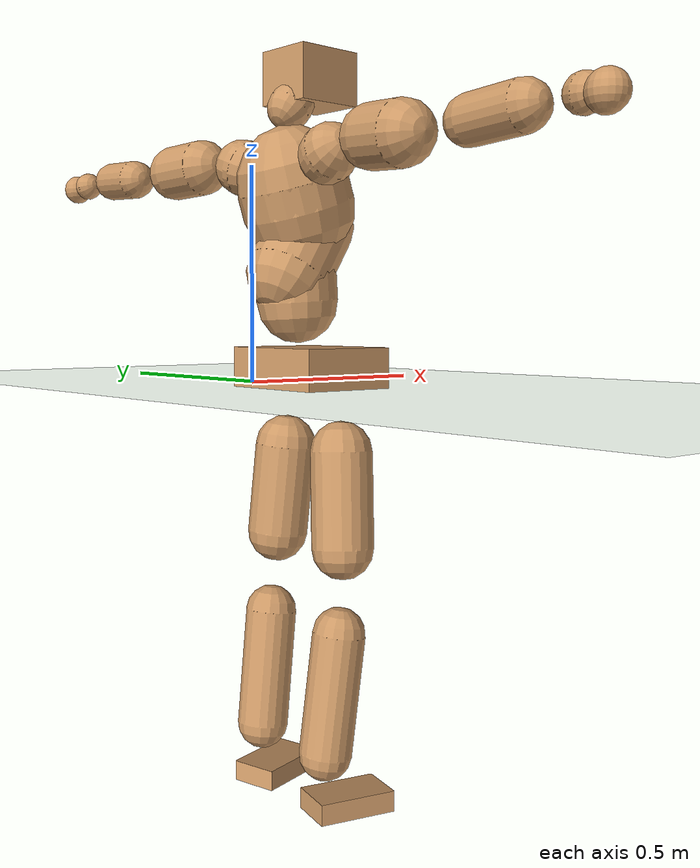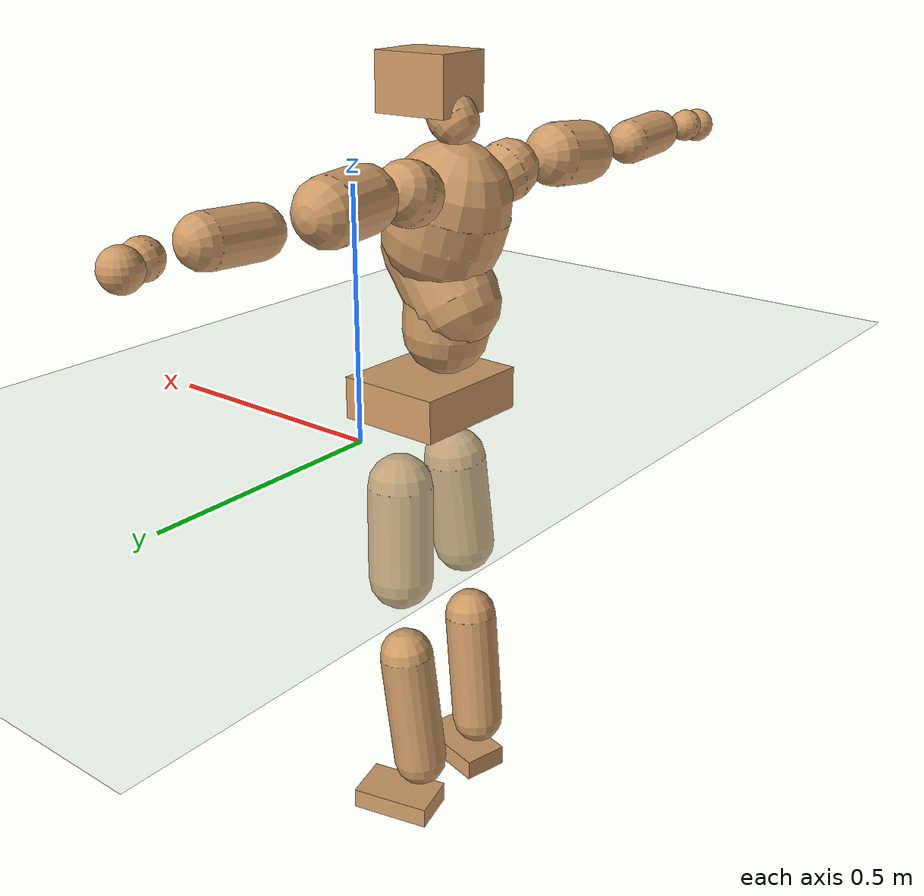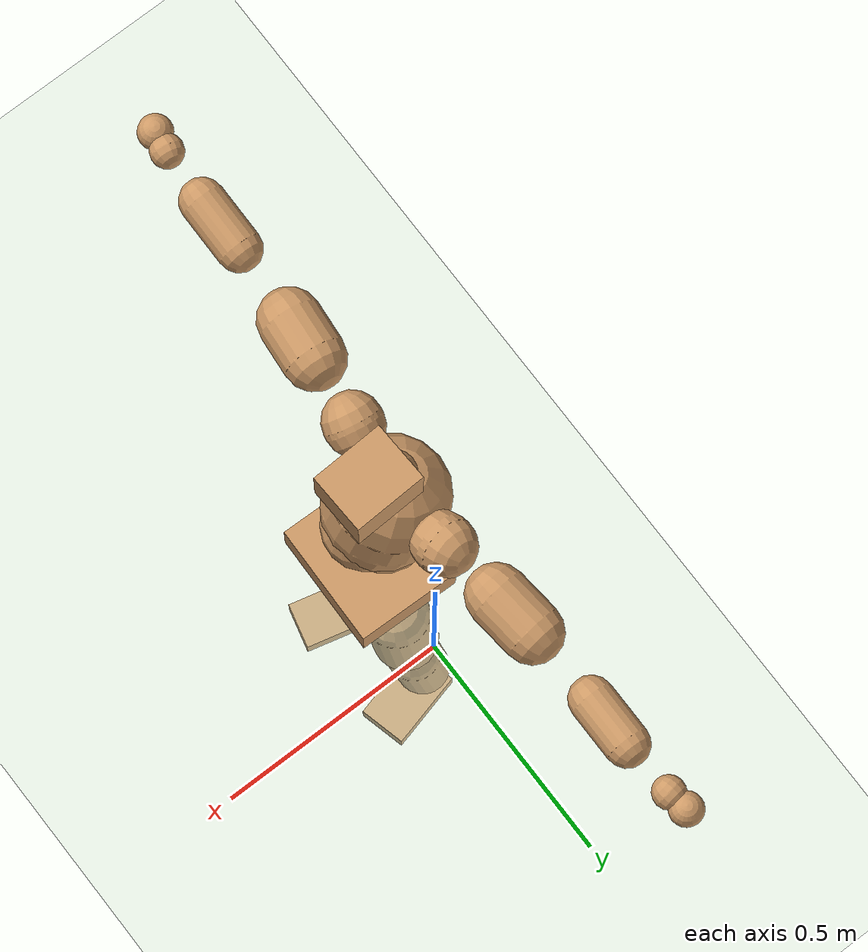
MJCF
<mujoco model="humanoid">
  <compiler coordinate="local" angle="radian"/>
  <default>
    <joint damping="0.0" armature="0.01" stiffness="0.0" limited="true"/>
    <geom conaffinity="1" condim="3" contype="7" margin="0.001" rgba="0.8 0.6 .4 1"/>
  </default>
  <asset>
    <texture type="skybox" builtin="gradient" rgb1=".4 .5 .6" rgb2="0 0 0" width="100" height="100"/>
    <texture builtin="flat" height="1278" mark="cross" markrgb="1 1 1" name="texgeom" random="0.01" rgb1="0.8 0.6 0.4" rgb2="0.8 0.6 0.4" type="cube" width="127"/>
    <texture builtin="checker" height="100" name="texplane" rgb1="0 0 0" rgb2="0.8 0.8 0.8" type="2d" width="100"/>
    <material name="MatPlane" reflectance="0.5" shininess="1" specular="1" texrepeat="60 60" texture="texplane"/>
    <material name="geom" texture="texgeom" texuniform="true"/>
  </asset>
  <worldbody>
    <light cutoff="100" diffuse="1 1 1" dir="-0 0 -1.3" directional="true" exponent="1" pos="0 0 1.3" specular=".1 .1 .1"/>
    <geom conaffinity="1" condim="3" name="floor" pos="0 0 0" rgba="0.8 0.9 0.8 1" size="100 100 .2" type="plane" material="MatPlane"/>
    <body name="Pelvis" pos="0.0022 -0.2114 0.0558">
      <freejoint name="Pelvis"/>
      <geom type="box" contype="1" conaffinity="1" density="5359.375172" pos="-0.0039 0.0001 -0.0135" size="0.1116 0.1323 0.0443" quat="0.9999 0.0000 0.0000 -0.0107" name="Pelvis"/>
      <body name="L_Hip" pos="0.0076 0.0856 -0.0955">
        <joint name="L_Hip_x" type="hinge" pos="0 0 0" axis="1 0 0" stiffness="1600" damping="160" armature="0.02" range="-180.0000 180.0000"/>
        <joint name="L_Hip_y" type="hinge" pos="0 0 0" axis="0 1 0" stiffness="1600" damping="160" armature="0.02" range="-180.0000 180.0000"/>
        <joint name="L_Hip_z" type="hinge" pos="0 0 0" axis="0 0 1" stiffness="1600" damping="160" armature="0.02" range="-180.0000 180.0000"/>
        <geom type="capsule" contype="1" conaffinity="1" density="2040.816327" size="0.0684" fromto="-0.0056 0.0072 -0.0980 -0.0170 0.0219 -0.2991" name="L_Hip"/>
        <body name="L_Knee" pos="-0.0225 0.029 -0.3971">
          <joint name="L_Knee_x" type="hinge" pos="0 0 0" axis="1 0 0" stiffness="1600" damping="160" armature="0.02" range="-180.0000 180.0000"/>
          <joint name="L_Knee_y" type="hinge" pos="0 0 0" axis="0 1 0" stiffness="1600" damping="160" armature="0.02" range="-180.0000 180.0000"/>
          <joint name="L_Knee_z" type="hinge" pos="0 0 0" axis="0 0 1" stiffness="1600" damping="160" armature="0.02" range="-180.0000 180.0000"/>
          <geom type="capsule" contype="1" conaffinity="1" density="1234.567901" size="0.0578" fromto="-0.0101 -0.0023 -0.0871 -0.0405 -0.0092 -0.3483" name="L_Knee"/>
          <body name="L_Ankle" pos="-0.0507 -0.0115 -0.4355">
            <joint name="L_Ankle_x" type="hinge" pos="0 0 0" axis="1 0 0" stiffness="1600" damping="160" armature="0.02" range="-180.0000 180.0000"/>
            <joint name="L_Ankle_y" type="hinge" pos="0 0 0" axis="0 1 0" stiffness="1600" damping="160" armature="0.02" range="-180.0000 180.0000"/>
            <joint name="L_Ankle_z" type="hinge" pos="0 0 0" axis="0 0 1" stiffness="1600" damping="160" armature="0.02" range="-180.0000 180.0000"/>
            <geom type="box" contype="1" conaffinity="1" density="999.999995" pos="0.0613 0.0156 -0.0320" size="0.0873 0.0528 0.0228" quat="0.9922 0.0000 0.0000 0.1245" name="L_Ankle"/>
            <body name="L_Toe" pos="0.1227 0.0313 -0.0639">
              <joint name="L_Toe_x" type="hinge" pos="0 0 0" axis="1 0 0" stiffness="1000" damping="100" armature="0.02" range="-180.0000 180.0000"/>
              <joint name="L_Toe_y" type="hinge" pos="0 0 0" axis="0 1 0" stiffness="1000" damping="100" armature="0.02" range="-180.0000 180.0000"/>
              <joint name="L_Toe_z" type="hinge" pos="0 0 0" axis="0 0 1" stiffness="1000" damping="100" armature="0.02" range="-180.0000 180.0000"/>
              <geom type="box" contype="1" conaffinity="1" density="8188965.676403" pos="0.0000 0.0000 0.0315" size="0.0011 0.0026 0.0011" quat="0.9915 0.0000 0.0000 0.1301" name="L_Toe"/>
            </body>
          </body>
        </body>
      </body>
      <body name="R_Hip" pos="0.0113 -0.0832 -0.0966">
        <joint name="R_Hip_x" type="hinge" pos="0 0 0" axis="1 0 0" stiffness="1600" damping="160" armature="0.02" range="-180.0000 180.0000"/>
        <joint name="R_Hip_y" type="hinge" pos="0 0 0" axis="0 1 0" stiffness="1600" damping="160" armature="0.02" range="-180.0000 180.0000"/>
        <joint name="R_Hip_z" type="hinge" pos="0 0 0" axis="0 0 1" stiffness="1600" damping="160" armature="0.02" range="-180.0000 180.0000"/>
        <geom type="capsule" contype="1" conaffinity="1" density="2040.816327" size="0.0675" fromto="-0.0054 -0.0093 -0.0969 -0.0170 -0.0291 -0.3048" name="R_Hip"/>
        <body name="R_Knee" pos="-0.0224 -0.0384 -0.4017">
          <joint name="R_Knee_x" type="hinge" pos="0 0 0" axis="1 0 0" stiffness="1600" damping="160" armature="0.02" range="-180.0000 180.0000"/>
          <joint name="R_Knee_y" type="hinge" pos="0 0 0" axis="0 1 0" stiffness="1600" damping="160" armature="0.02" range="-180.0000 180.0000"/>
          <joint name="R_Knee_z" type="hinge" pos="0 0 0" axis="0 0 1" stiffness="1600" damping="160" armature="0.02" range="-180.0000 180.0000"/>
          <geom type="capsule" contype="1" conaffinity="1" density="1234.567901" size="0.0579" fromto="-0.0098 0.0028 -0.0873 -0.0396 0.0113 -0.3523" name="R_Knee"/>
          <body name="R_Ankle" pos="-0.0494 0.014 -0.4396">
            <joint name="R_Ankle_x" type="hinge" pos="0 0 0" axis="1 0 0" stiffness="1600" damping="160" armature="0.02" range="-180.0000 180.0000"/>
            <joint name="R_Ankle_y" type="hinge" pos="0 0 0" axis="0 1 0" stiffness="1600" damping="160" armature="0.02" range="-180.0000 180.0000"/>
            <joint name="R_Ankle_z" type="hinge" pos="0 0 0" axis="0 0 1" stiffness="1600" damping="160" armature="0.02" range="-180.0000 180.0000"/>
            <geom type="box" contype="1" conaffinity="1" density="999.999962" pos="0.0640 -0.0157 -0.0271" size="0.0897 0.0511 0.0234" quat="0.9928 0.0000 0.0000 -0.1199" name="R_Ankle"/>
            <body name="R_Toe" pos="0.128 -0.0314 -0.0541">
              <joint name="R_Toe_x" type="hinge" pos="0 0 0" axis="1 0 0" stiffness="1000" damping="100" armature="0.02" range="-180.0000 180.0000"/>
              <joint name="R_Toe_y" type="hinge" pos="0 0 0" axis="0 1 0" stiffness="1000" damping="100" armature="0.02" range="-180.0000 180.0000"/>
              <joint name="R_Toe_z" type="hinge" pos="0 0 0" axis="0 0 1" stiffness="1000" damping="100" armature="0.02" range="-180.0000 180.0000"/>
              <geom type="box" contype="1" conaffinity="1" density="7828393.255664" pos="0.0000 0.0000 0.0286" size="0.0011 0.0026 0.0012" quat="0.9938 0.0000 0.0000 -0.1109" name="R_Toe"/>
            </body>
          </body>
        </body>
      </body>
      <body name="Torso" pos="-0.0423 -0.0019 0.1113">
        <joint name="Torso_x" type="hinge" pos="0 0 0" axis="1 0 0" stiffness="2000" damping="200" armature="0.02" range="-180.0000 180.0000"/>
        <joint name="Torso_y" type="hinge" pos="0 0 0" axis="0 1 0" stiffness="2000" damping="200" armature="0.02" range="-180.0000 180.0000"/>
        <joint name="Torso_z" type="hinge" pos="0 0 0" axis="0 0 1" stiffness="2000" damping="200" armature="0.02" range="-180.0000 180.0000"/>
        <geom type="capsule" contype="1" conaffinity="1" density="2040.816327" size="0.0882" fromto="-0.0061 0.0014 0.0880 -0.0012 0.0003 0.0174" name="Torso"/>
        <body name="Spine" pos="-0.0073 0.0016 0.1054">
          <joint name="Spine_x" type="hinge" pos="0 0 0" axis="1 0 0" stiffness="2000" damping="200" armature="0.02" range="-180.0000 180.0000"/>
          <joint name="Spine_y" type="hinge" pos="0 0 0" axis="0 1 0" stiffness="2000" damping="200" armature="0.02" range="-180.0000 180.0000"/>
          <joint name="Spine_z" type="hinge" pos="0 0 0" axis="0 0 1" stiffness="2000" damping="200" armature="0.02" range="-180.0000 180.0000"/>
          <geom type="capsule" contype="1" conaffinity="1" density="2040.816327" size="0.0919" fromto="0.0500 0.0022 0.0771 -0.0174 -0.0008 -0.0269" name="Spine"/>
          <body name="Chest" pos="0.0326 0.0014 0.0503">
            <joint name="Chest_x" type="hinge" pos="0 0 0" axis="1 0 0" stiffness="2000" damping="200" armature="0.02" range="-180.0000 180.0000"/>
            <joint name="Chest_y" type="hinge" pos="0 0 0" axis="0 1 0" stiffness="2000" damping="200" armature="0.02" range="-180.0000 180.0000"/>
            <joint name="Chest_z" type="hinge" pos="0 0 0" axis="0 0 1" stiffness="2000" damping="200" armature="0.02" range="-180.0000 180.0000"/>
            <geom type="capsule" contype="1" conaffinity="1" density="2040.816327" size="0.1211" fromto="-0.0387 -0.0005 0.1148 -0.0199 -0.0003 0.0590" name="Chest"/>
            <body name="Neck" pos="-0.0699 -0.0005 0.2436">
              <joint name="Neck_x" type="hinge" pos="0 0 0" axis="1 0 0" stiffness="1000" damping="100" armature="0.02" range="-180.0000 180.0000"/>
              <joint name="Neck_y" type="hinge" pos="0 0 0" axis="0 1 0" stiffness="1000" damping="100" armature="0.02" range="-180.0000 180.0000"/>
              <joint name="Neck_z" type="hinge" pos="0 0 0" axis="0 0 1" stiffness="1000" damping="100" armature="0.02" range="-180.0000 180.0000"/>
              <geom type="capsule" contype="1" conaffinity="1" density="1000" size="0.0471" fromto="0.0311 0.0003 0.0354 0.0218 0.0002 0.0248" name="Neck"/>
              <body name="Head" pos="0.0529 0.0005 0.0602">
                <joint name="Head_x" type="hinge" pos="0 0 0" axis="1 0 0" stiffness="1000" damping="100" armature="0.02" range="-180.0000 180.0000"/>
                <joint name="Head_y" type="hinge" pos="0 0 0" axis="0 1 0" stiffness="1000" damping="100" armature="0.02" range="-180.0000 180.0000"/>
                <joint name="Head_z" type="hinge" pos="0 0 0" axis="0 0 1" stiffness="1000" damping="100" armature="0.02" range="-180.0000 180.0000"/>
                <geom type="box" contype="1" conaffinity="1" density="2250.000219" pos="0.0274 0.0012 0.0311" size="0.0782 0.0641 0.0564" quat="0.9997 0.0000 0.0000 0.0227" name="Head"/>
              </body>
            </body>
            <body name="L_Thorax" pos="-0.0503 0.0929 0.1399">
              <joint name="L_Thorax_x" type="hinge" pos="0 0 0" axis="1 0 0" stiffness="1000" damping="100" armature="0.02" range="-180.0000 180.0000"/>
              <joint name="L_Thorax_y" type="hinge" pos="0 0 0" axis="0 1 0" stiffness="1000" damping="100" armature="0.02" range="-180.0000 180.0000"/>
              <joint name="L_Thorax_z" type="hinge" pos="0 0 0" axis="0 0 1" stiffness="1000" damping="100" armature="0.02" range="-180.0000 180.0000"/>
              <geom type="capsule" contype="1" conaffinity="1" density="1000" size="0.0612" fromto="-0.0076 0.0570 0.0209 -0.0055 0.0415 0.0152" name="L_Thorax"/>
              <body name="L_Shoulder" pos="-0.0131 0.0985 0.0361">
                <joint name="L_Shoulder_x" type="hinge" pos="0 0 0" axis="1 0 0" stiffness="1000" damping="100" armature="0.02" range="-720.0000 720.0000"/>
                <joint name="L_Shoulder_y" type="hinge" pos="0 0 0" axis="0 1 0" stiffness="1000" damping="100" armature="0.02" range="-720.0000 720.0000"/>
                <joint name="L_Shoulder_z" type="hinge" pos="0 0 0" axis="0 0 1" stiffness="1000" damping="100" armature="0.02" range="-720.0000 720.0000"/>
                <geom type="capsule" contype="1" conaffinity="1" density="1000" size="0.0623" fromto="-0.0101 0.0917 -0.0034 -0.0206 0.1882 -0.0070" name="L_Shoulder"/>
                <body name="L_Elbow" pos="-0.0307 0.2799 -0.0105">
                  <joint name="L_Elbow_x" type="hinge" pos="0 0 0" axis="1 0 0" stiffness="1000" damping="100" armature="0.02" range="-720.0000 720.0000"/>
                  <joint name="L_Elbow_y" type="hinge" pos="0 0 0" axis="0 1 0" stiffness="1000" damping="100" armature="0.02" range="-720.0000 720.0000"/>
                  <joint name="L_Elbow_z" type="hinge" pos="0 0 0" axis="0 0 1" stiffness="1000" damping="100" armature="0.02" range="-720.0000 720.0000"/>
                  <geom type="capsule" contype="1" conaffinity="1" density="1000" size="0.0456" fromto="0.0005 0.0755 0.0037 0.0013 0.1833 0.0089" name="L_Elbow"/>
                  <body name="L_Wrist" pos="0.0019 0.2588 0.0125">
                    <joint name="L_Wrist_x" type="hinge" pos="0 0 0" axis="1 0 0" stiffness="600" damping="60" armature="0.02" range="-180.0000 180.0000"/>
                    <joint name="L_Wrist_y" type="hinge" pos="0 0 0" axis="0 1 0" stiffness="600" damping="60" armature="0.02" range="-180.0000 180.0000"/>
                    <joint name="L_Wrist_z" type="hinge" pos="0 0 0" axis="0 0 1" stiffness="600" damping="60" armature="0.02" range="-180.0000 180.0000"/>
                    <geom type="capsule" contype="1" conaffinity="1" density="1000" size="0.0332" fromto="-0.0069 0.0424 -0.0050 -0.0072 0.0444 -0.0052" name="L_Wrist"/>
                    <body name="L_Hand" pos="-0.0141 0.0868 -0.0103">
                      <joint name="L_Hand_x" type="hinge" pos="0 0 0" axis="1 0 0" stiffness="600" damping="60" armature="0.02" range="-180.0000 180.0000"/>
                      <joint name="L_Hand_y" type="hinge" pos="0 0 0" axis="0 1 0" stiffness="600" damping="60" armature="0.02" range="-180.0000 180.0000"/>
                      <joint name="L_Hand_z" type="hinge" pos="0 0 0" axis="0 0 1" stiffness="600" damping="60" armature="0.02" range="-180.0000 180.0000"/>
                      <geom type="sphere" contype="1" conaffinity="1" density="1000" size="0.0350" pos="0.0000 0.0000 0.0000" name="L_Hand"/>
                    </body>
                  </body>
                </body>
              </body>
            </body>
            <body name="R_Thorax" pos="-0.0556 -0.0948 0.1379">
              <joint name="R_Thorax_x" type="hinge" pos="0 0 0" axis="1 0 0" stiffness="1000" damping="100" armature="0.02" range="-180.0000 180.0000"/>
              <joint name="R_Thorax_y" type="hinge" pos="0 0 0" axis="0 1 0" stiffness="1000" damping="100" armature="0.02" range="-180.0000 180.0000"/>
              <joint name="R_Thorax_z" type="hinge" pos="0 0 0" axis="0 0 1" stiffness="1000" damping="100" armature="0.02" range="-180.0000 180.0000"/>
              <geom type="capsule" contype="1" conaffinity="1" density="1000" size="0.0604" fromto="-0.0081 -0.0558 0.0216 -0.0065 -0.0450 0.0174" name="R_Thorax"/>
              <body name="R_Shoulder" pos="-0.0146 -0.1008 0.039">
                <joint name="R_Shoulder_x" type="hinge" pos="0 0 0" axis="1 0 0" stiffness="1000" damping="100" armature="0.02" range="-720.0000 720.0000"/>
                <joint name="R_Shoulder_y" type="hinge" pos="0 0 0" axis="0 1 0" stiffness="1000" damping="100" armature="0.02" range="-720.0000 720.0000"/>
                <joint name="R_Shoulder_z" type="hinge" pos="0 0 0" axis="0 0 1" stiffness="1000" damping="100" armature="0.02" range="-720.0000 720.0000"/>
                <geom type="capsule" contype="1" conaffinity="1" density="1000" size="0.0644" fromto="-0.0090 -0.0938 -0.0058 -0.0177 -0.1833 -0.0114" name="R_Shoulder"/>
                <body name="R_Elbow" pos="-0.0267 -0.277 -0.0172">
                  <joint name="R_Elbow_x" type="hinge" pos="0 0 0" axis="1 0 0" stiffness="1000" damping="100" armature="0.02" range="-720.0000 720.0000"/>
                  <joint name="R_Elbow_y" type="hinge" pos="0 0 0" axis="0 1 0" stiffness="1000" damping="100" armature="0.02" range="-720.0000 720.0000"/>
                  <joint name="R_Elbow_z" type="hinge" pos="0 0 0" axis="0 0 1" stiffness="1000" damping="100" armature="0.02" range="-720.0000 720.0000"/>
                  <geom type="capsule" contype="1" conaffinity="1" density="1000" size="0.0465" fromto="0.0000 -0.0764 0.0046 0.0000 -0.1931 0.0116" name="R_Elbow"/>
                  <body name="R_Wrist" pos="0 -0.2695 0.0162">
                    <joint name="R_Wrist_x" type="hinge" pos="0 0 0" axis="1 0 0" stiffness="600" damping="60" armature="0.02" range="-180.0000 180.0000"/>
                    <joint name="R_Wrist_y" type="hinge" pos="0 0 0" axis="0 1 0" stiffness="600" damping="60" armature="0.02" range="-180.0000 180.0000"/>
                    <joint name="R_Wrist_z" type="hinge" pos="0 0 0" axis="0 0 1" stiffness="600" damping="60" armature="0.02" range="-180.0000 180.0000"/>
                    <geom type="capsule" contype="1" conaffinity="1" density="1000" size="0.0346" fromto="-0.0057 -0.0437 -0.0040 -0.0060 -0.0457 -0.0041" name="R_Wrist"/>
                    <body name="R_Hand" pos="-0.0117 -0.0894 -0.0081">
                      <joint name="R_Hand_x" type="hinge" pos="0 0 0" axis="1 0 0" stiffness="600" damping="60" armature="0.02" range="-180.0000 180.0000"/>
                      <joint name="R_Hand_y" type="hinge" pos="0 0 0" axis="0 1 0" stiffness="600" damping="60" armature="0.02" range="-180.0000 180.0000"/>
                      <joint name="R_Hand_z" type="hinge" pos="0 0 0" axis="0 0 1" stiffness="600" damping="60" armature="0.02" range="-180.0000 180.0000"/>
                      <geom type="sphere" contype="1" conaffinity="1" density="1000" size="0.0360" pos="0.0000 0.0000 0.0000" name="R_Hand"/>
                    </body>
                  </body>
                </body>
              </body>
            </body>
          </body>
        </body>
      </body>
    </body>
  </worldbody>
  <actuator>
    <motor name="L_Hip_x" joint="L_Hip_x" gear="500"/>
    <motor name="L_Hip_y" joint="L_Hip_y" gear="500"/>
    <motor name="L_Hip_z" joint="L_Hip_z" gear="500"/>
    <motor name="L_Knee_x" joint="L_Knee_x" gear="500"/>
    <motor name="L_Knee_y" joint="L_Knee_y" gear="500"/>
    <motor name="L_Knee_z" joint="L_Knee_z" gear="500"/>
    <motor name="L_Ankle_x" joint="L_Ankle_x" gear="500"/>
    <motor name="L_Ankle_y" joint="L_Ankle_y" gear="500"/>
    <motor name="L_Ankle_z" joint="L_Ankle_z" gear="500"/>
    <motor name="L_Toe_x" joint="L_Toe_x" gear="500"/>
    <motor name="L_Toe_y" joint="L_Toe_y" gear="500"/>
    <motor name="L_Toe_z" joint="L_Toe_z" gear="500"/>
    <motor name="R_Hip_x" joint="R_Hip_x" gear="500"/>
    <motor name="R_Hip_y" joint="R_Hip_y" gear="500"/>
    <motor name="R_Hip_z" joint="R_Hip_z" gear="500"/>
    <motor name="R_Knee_x" joint="R_Knee_x" gear="500"/>
    <motor name="R_Knee_y" joint="R_Knee_y" gear="500"/>
    <motor name="R_Knee_z" joint="R_Knee_z" gear="500"/>
    <motor name="R_Ankle_x" joint="R_Ankle_x" gear="500"/>
    <motor name="R_Ankle_y" joint="R_Ankle_y" gear="500"/>
    <motor name="R_Ankle_z" joint="R_Ankle_z" gear="500"/>
    <motor name="R_Toe_x" joint="R_Toe_x" gear="500"/>
    <motor name="R_Toe_y" joint="R_Toe_y" gear="500"/>
    <motor name="R_Toe_z" joint="R_Toe_z" gear="500"/>
    <motor name="Torso_x" joint="Torso_x" gear="500"/>
    <motor name="Torso_y" joint="Torso_y" gear="500"/>
    <motor name="Torso_z" joint="Torso_z" gear="500"/>
    <motor name="Spine_x" joint="Spine_x" gear="500"/>
    <motor name="Spine_y" joint="Spine_y" gear="500"/>
    <motor name="Spine_z" joint="Spine_z" gear="500"/>
    <motor name="Chest_x" joint="Chest_x" gear="500"/>
    <motor name="Chest_y" joint="Chest_y" gear="500"/>
    <motor name="Chest_z" joint="Chest_z" gear="500"/>
    <motor name="Neck_x" joint="Neck_x" gear="500"/>
    <motor name="Neck_y" joint="Neck_y" gear="500"/>
    <motor name="Neck_z" joint="Neck_z" gear="500"/>
    <motor name="Head_x" joint="Head_x" gear="500"/>
    <motor name="Head_y" joint="Head_y" gear="500"/>
    <motor name="Head_z" joint="Head_z" gear="500"/>
    <motor name="L_Thorax_x" joint="L_Thorax_x" gear="500"/>
    <motor name="L_Thorax_y" joint="L_Thorax_y" gear="500"/>
    <motor name="L_Thorax_z" joint="L_Thorax_z" gear="500"/>
    <motor name="L_Shoulder_x" joint="L_Shoulder_x" gear="500"/>
    <motor name="L_Shoulder_y" joint="L_Shoulder_y" gear="500"/>
    <motor name="L_Shoulder_z" joint="L_Shoulder_z" gear="500"/>
    <motor name="L_Elbow_x" joint="L_Elbow_x" gear="500"/>
    <motor name="L_Elbow_y" joint="L_Elbow_y" gear="500"/>
    <motor name="L_Elbow_z" joint="L_Elbow_z" gear="500"/>
    <motor name="L_Wrist_x" joint="L_Wrist_x" gear="500"/>
    <motor name="L_Wrist_y" joint="L_Wrist_y" gear="500"/>
    <motor name="L_Wrist_z" joint="L_Wrist_z" gear="500"/>
    <motor name="L_Hand_x" joint="L_Hand_x" gear="500"/>
    <motor name="L_Hand_y" joint="L_Hand_y" gear="500"/>
    <motor name="L_Hand_z" joint="L_Hand_z" gear="500"/>
    <motor name="R_Thorax_x" joint="R_Thorax_x" gear="500"/>
    <motor name="R_Thorax_y" joint="R_Thorax_y" gear="500"/>
    <motor name="R_Thorax_z" joint="R_Thorax_z" gear="500"/>
    <motor name="R_Shoulder_x" joint="R_Shoulder_x" gear="500"/>
    <motor name="R_Shoulder_y" joint="R_Shoulder_y" gear="500"/>
    <motor name="R_Shoulder_z" joint="R_Shoulder_z" gear="500"/>
    <motor name="R_Elbow_x" joint="R_Elbow_x" gear="500"/>
    <motor name="R_Elbow_y" joint="R_Elbow_y" gear="500"/>
    <motor name="R_Elbow_z" joint="R_Elbow_z" gear="500"/>
    <motor name="R_Wrist_x" joint="R_Wrist_x" gear="500"/>
    <motor name="R_Wrist_y" joint="R_Wrist_y" gear="500"/>
    <motor name="R_Wrist_z" joint="R_Wrist_z" gear="500"/>
    <motor name="R_Hand_x" joint="R_Hand_x" gear="500"/>
    <motor name="R_Hand_y" joint="R_Hand_y" gear="500"/>
    <motor name="R_Hand_z" joint="R_Hand_z" gear="500"/>
  </actuator>
  <contact>
    <exclude body1="Torso" body2="Chest"/>
    <exclude body1="Head" body2="Chest"/>
    <exclude body1="R_Knee" body2="R_Toe"/>
    <exclude body1="R_Knee" body2="L_Ankle"/>
    <exclude body1="R_Knee" body2="L_Toe"/>
    <exclude body1="L_Knee" body2="L_Toe"/>
    <exclude body1="L_Knee" body2="R_Ankle"/>
    <exclude body1="L_Knee" body2="R_Toe"/>
    <exclude body1="L_Shoulder" body2="Chest"/>
    <exclude body1="R_Shoulder" body2="Chest"/>
  </contact>
  <sensor/>
  <size njmax="700" nconmax="700"/>
</mujoco>
